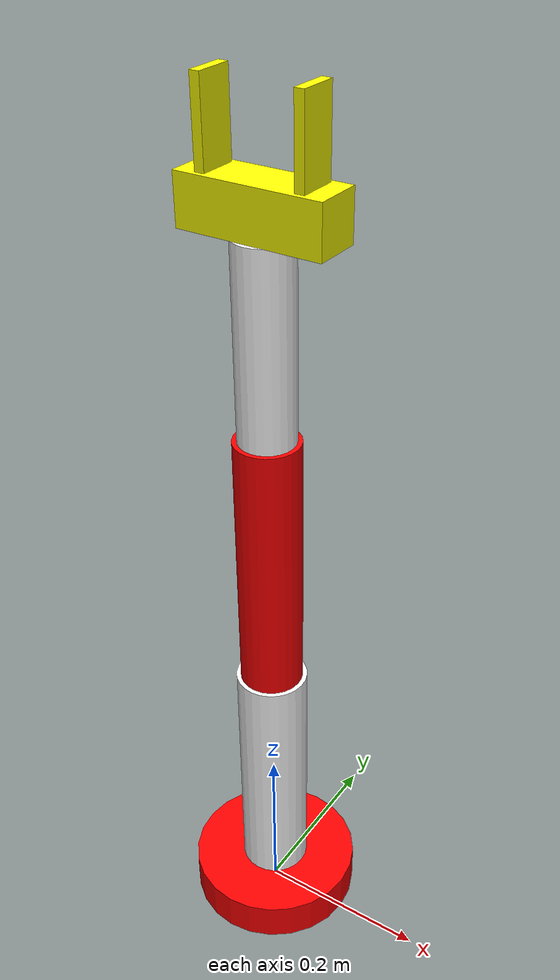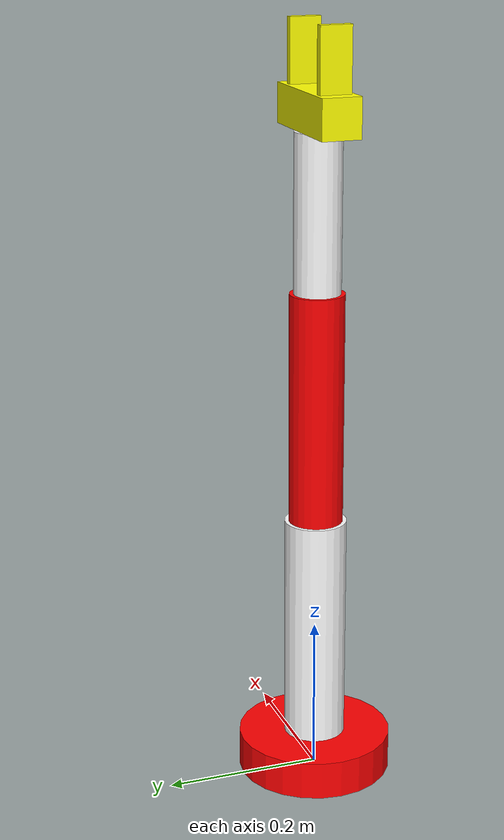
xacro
<?xml version="1.0"?>
<robot xmlns:xacro="http://www.ros.org/wiki/xacro" name="basic_arm">

    <xacro:include filename="$(find william)/urdf/basic_arm.urdf" />

    <xacro:include filename="basic_arm.ros2_control.xacro" />

    <xacro:basic_arm_ros2_control name="GazeboSimSystem" />

    <gazebo>
        <plugin filename="libgz_ros2_control-system.so" name="gz_ros2_control::GazeboSimROS2ControlPlugin">
            <parameters>$(find basic_arm_moveit_config)/config/ros2_controllers.yaml</parameters>
            <controller_manager_name>controller_manager</controller_manager_name>
        </plugin>
    </gazebo>

</robot>

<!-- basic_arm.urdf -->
<robot name="basic_arm">

  <material name="red"><color rgba="1 0 0 1"/></material>
  <material name="white"><color rgba="1 1 1 1"/></material>
  <material name="yellow"><color rgba="1 1 0 1"/></material>

  <link name="world"/>
  <joint name="fixed_base_joint" type="fixed">
    <parent link="world"/>
    <child link="base_link"/>
  </joint>

  <link name="base_link">
    <visual>
      <origin xyz="0 0 0.025" rpy="0 0 0"/>
      <geometry><cylinder radius="0.1" length="0.05"/></geometry>
      <material name="red"/>
    </visual>
    <collision>
      <origin xyz="0 0 0.025" rpy="0 0 0"/>
      <geometry><cylinder radius="0.1" length="0.05"/></geometry>
    </collision>
    <inertial>
      <origin xyz="0 0 0.025" rpy="0 0 0"/>
      <mass value="1.0"/>
      <inertia ixx="0.0027" ixy="0.0" ixz="0.0" iyy="0.0027" iyz="0.0" izz="0.005"/>
    </inertial>
  </link>

  <joint name="arm_0_joint" type="revolute">
    <parent link="base_link"/><child link="link_1"/>
    <origin xyz="0 0 0.05" rpy="0 0 0"/><axis xyz="0 0 1"/>
    <limit lower="-3.14" upper="3.14" effort="100" velocity="1.0"/>
  </joint>

  <link name="link_1">
    <visual>
      <origin xyz="0 0 0.15" rpy="0 0 0"/>
      <geometry><cylinder radius="0.04" length="0.3"/></geometry>
      <material name="white"/>
    </visual>
    <collision>
      <origin xyz="0 0 0.15" rpy="0 0 0"/>
      <geometry><cylinder radius="0.04" length="0.3"/></geometry>
    </collision>
    <inertial>
      <origin xyz="0 0 0.15" rpy="0 0 0"/>
      <mass value="1.0"/>
      <inertia ixx="0.0079" ixy="0.0" ixz="0.0" iyy="0.0079" iyz="0.0" izz="0.0008"/>
    </inertial>
  </link>

  <joint name="arm_1_joint" type="revolute">
    <parent link="link_1"/><child link="link_2"/>
    <origin xyz="0 0 0.3" rpy="0 0 0"/><axis xyz="0 1 0"/>
    <limit lower="-1.57" upper="1.57" effort="100" velocity="1.0"/>
  </joint>

  <link name="link_2">
    <visual>
      <origin xyz="0 0 0.15" rpy="0 0 0"/>
      <geometry><cylinder radius="0.035" length="0.3"/></geometry>
      <material name="red"/>
    </visual>
    <collision>
      <origin xyz="0 0 0.15" rpy="0 0 0"/>
      <geometry><cylinder radius="0.035" length="0.3"/></geometry>
    </collision>
    <inertial>
      <origin xyz="0 0 0.15" rpy="0 0 0"/>
      <mass value="1.0"/>
      <inertia ixx="0.0078" ixy="0.0" ixz="0.0" iyy="0.0078" iyz="0.0" izz="0.0006"/>
    </inertial>
  </link>

  <joint name="arm_2_joint" type="revolute">
    <parent link="link_2"/><child link="link_3"/>
    <origin xyz="0 0 0.3" rpy="0 0 0"/><axis xyz="0 1 0"/>
    <limit lower="-1.57" upper="1.57" effort="100" velocity="1.0"/>
  </joint>

  <link name="link_3">
    <visual>
      <origin xyz="0 0 0.1" rpy="0 0 0"/>
      <geometry><cylinder radius="0.03" length="0.2"/></geometry>
      <material name="white"/>
    </visual>
    <collision>
      <origin xyz="0 0 0.1" rpy="0 0 0"/>
      <geometry><cylinder radius="0.03" length="0.2"/></geometry>
    </collision>
    <inertial>
      <origin xyz="0 0 0.1" rpy="0 0 0"/>
      <mass value="0.5"/>
      <inertia ixx="0.0018" ixy="0.0" ixz="0.0" iyy="0.0018" iyz="0.0" izz="0.0002"/>
    </inertial>
  </link>

  <joint name="gripper_base_joint" type="fixed">
    <parent link="link_3"/><child link="gripper_base"/>
    <origin xyz="0 0 0.2" rpy="0 0 0"/>
  </joint>

  <link name="gripper_base">
    <visual>
      <origin xyz="0 0 0.025" rpy="0 0 0"/>
      <geometry><box size="0.15 0.05 0.05"/></geometry>
      <material name="yellow"/>
    </visual>
    <collision>
      <origin xyz="0 0 0.025" rpy="0 0 0"/>
      <geometry><box size="0.15 0.05 0.05"/></geometry>
    </collision>
    <inertial>
      <origin xyz="0 0 0.025" rpy="0 0 0"/>
      <mass value="0.2"/>
      <inertia ixx="0.00008" ixy="0.0" ixz="0.0" iyy="0.0004" iyz="0.0" izz="0.0004"/>
    </inertial>
  </link>

  <joint name="gripper_1_joint" type="prismatic">
    <parent link="gripper_base"/><child link="gripper_jaw_1"/>
    <origin xyz="0.05 0 0.05" rpy="0 0 0"/><axis xyz="1 0 0"/>
    <limit lower="0.0" upper="0.03" effort="50" velocity="0.5"/>
  </joint>

  <link name="gripper_jaw_1">
    <visual>
      <origin xyz="0 0 0.04" rpy="0 0 0"/>
      <geometry><box size="0.01 0.04 0.08"/></geometry>
      <material name="yellow"/>
    </visual>
    <collision>
      <origin xyz="0 0 0.04" rpy="0 0 0"/>
      <geometry><box size="0.01 0.04 0.08"/></geometry>
    </collision>
    <inertial>
      <origin xyz="0 0 0.04" rpy="0 0 0"/>
      <mass value="0.05"/>
      <inertia ixx="0.00003" ixy="0.0" ixz="0.0" iyy="0.00003" iyz="0.0" izz="0.00001"/>
    </inertial>
  </link>

  <joint name="gripper_2_joint" type="prismatic">
    <parent link="gripper_base"/><child link="gripper_jaw_2"/>
    <origin xyz="-0.05 0 0.05" rpy="0 0 0"/><axis xyz="-1 0 0"/>
    <limit lower="0.0" upper="0.03" effort="50" velocity="0.5"/>
  </joint>

  <link name="gripper_jaw_2">
    <visual>
      <origin xyz="0 0 0.04" rpy="0 0 0"/>
      <geometry><box size="0.01 0.04 0.08"/></geometry>
      <material name="yellow"/>
    </visual>
    <collision>
      <origin xyz="0 0 0.04" rpy="0 0 0"/>
      <geometry><box size="0.01 0.04 0.08"/></geometry>
    </collision>
    <inertial>
      <origin xyz="0 0 0.04" rpy="0 0 0"/>
      <mass value="0.05"/>
      <inertia ixx="0.00003" ixy="0.0" ixz="0.0" iyy="0.00003" iyz="0.0" izz="0.00001"/>
    </inertial>
  </link>
</robot>
